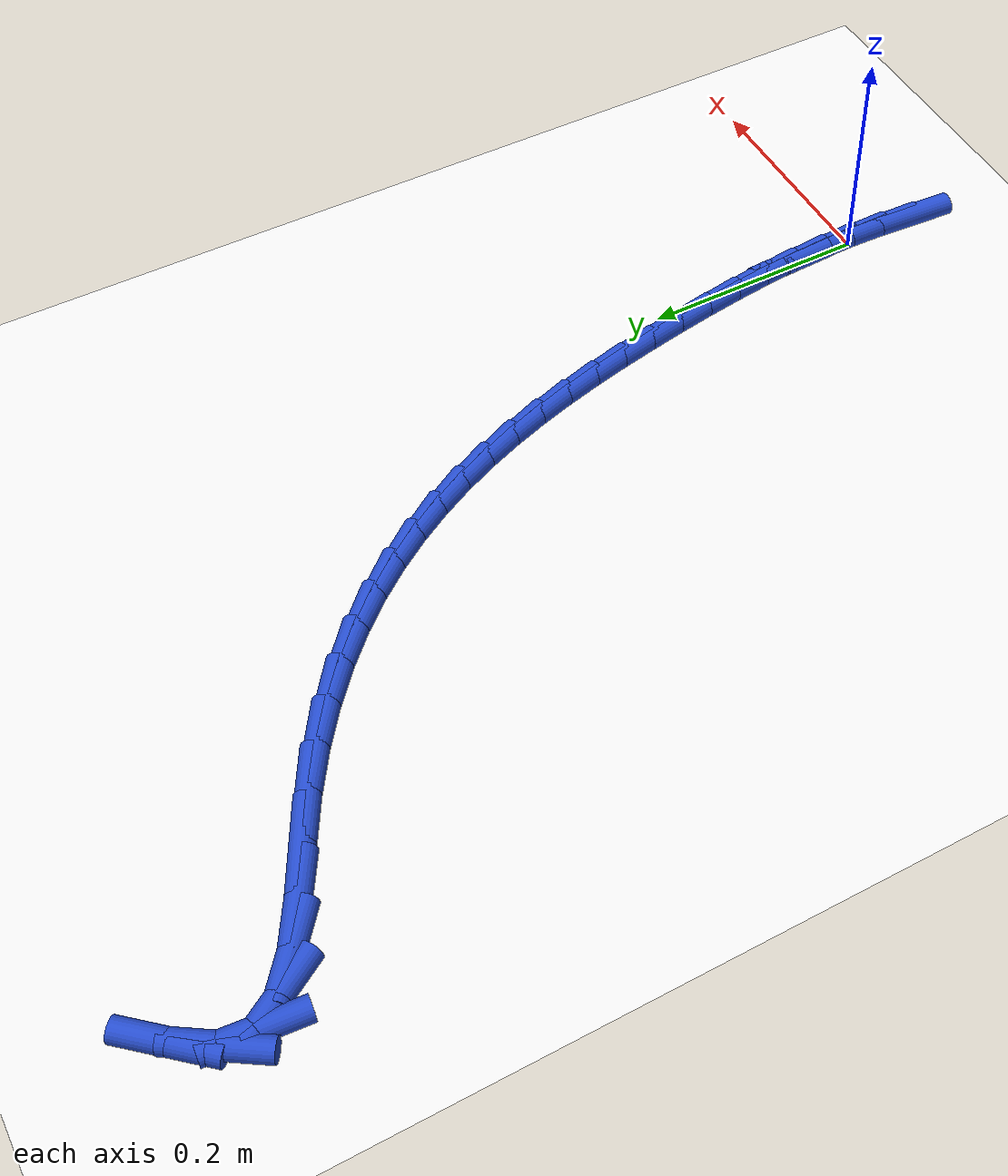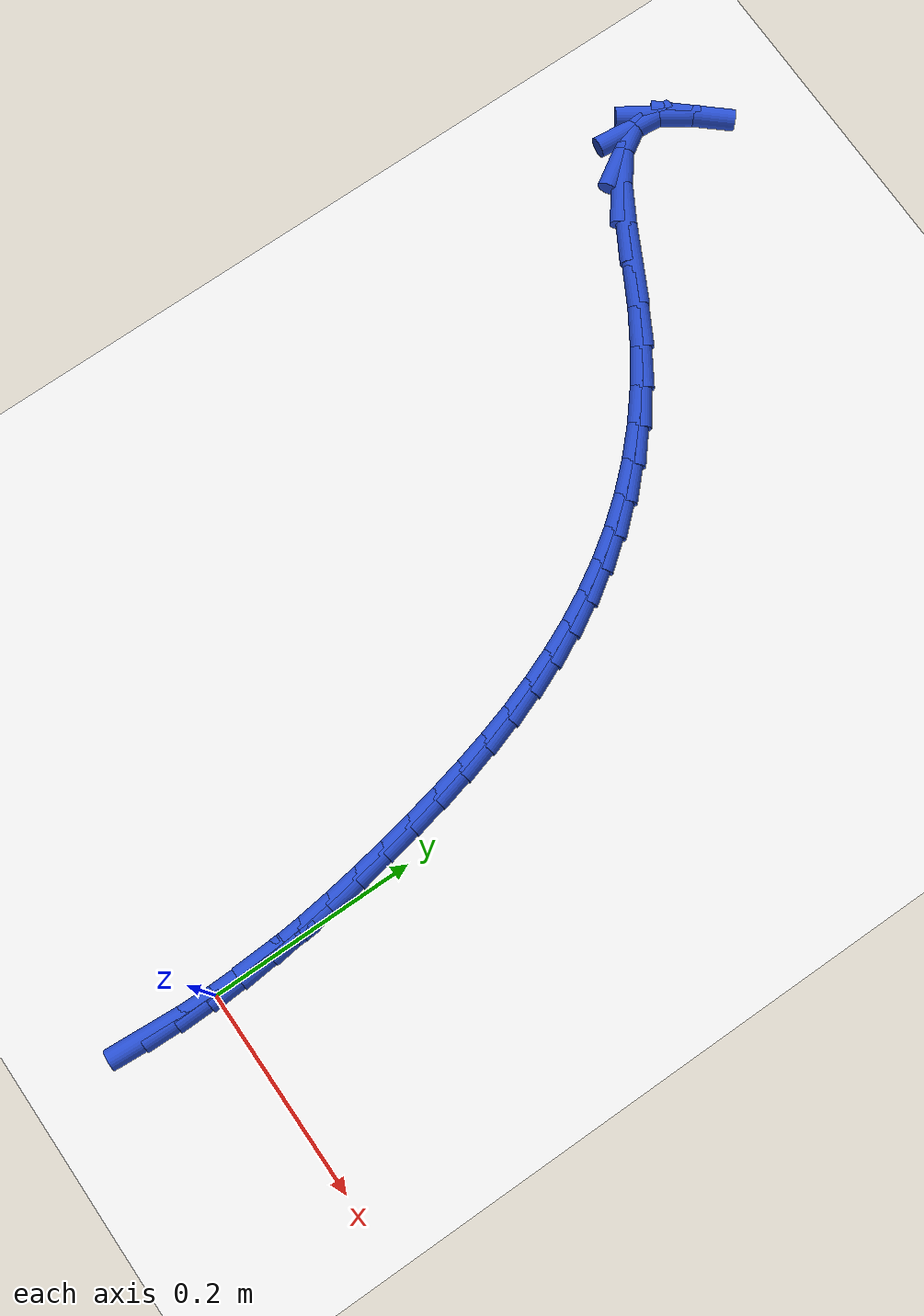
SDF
<sdf version="1.6">
 <world name="default">
  <model name="ground_plane">
   <static>1</static>
   <link name="link">
    <collision name="collision">
     <geometry><plane><normal>0 0 1</normal><size>100 100</size></plane></geometry>
     <surface><friction><ode><mu>100</mu><mu2>50</mu2></ode></friction></surface>
    </collision>
    <visual name="visual">
     <cast_shadows>0</cast_shadows>
     <geometry><plane><normal>0 0 1</normal><size>100 100</size></plane></geometry>
     <material>
      <script><uri>file://media/materials/scripts/gazebo.material</uri><name>Gazebo/WhiteGlow</name></script>
     </material>
    </visual>
   </link>
  </model>
  <model name="line">
   <link name="link_0">
    <pose>1.214306433183765e-17 0.0 0.01 0 1.57 -1.5551072129724937</pose>
    <collision name="collision">
     <geometry><cylinder><radius>0.01</radius><length>0.08</length></cylinder></geometry>
    </collision>
    <visual name="visual">
     <material>
      <script><name>Gazebo/Blue</name><uri>file://media/materials/scripts/gazebo.material</uri></script>
     </material>
     <geometry><cylinder><radius>0.01</radius><length>0.08</length></cylinder></geometry>
    </visual>
   </link>
   <link name="link_1">
    <pose>-0.0005051262843972646 0.03219333125570055 0.01 0 1.57 -1.5152921125011434</pose>
    <collision name="collision">
     <geometry><cylinder><radius>0.01</radius><length>0.08</length></cylinder></geometry>
    </collision>
    <visual name="visual">
     <material>
      <script><name>Gazebo/Blue</name><uri>file://media/materials/scripts/gazebo.material</uri></script>
     </material>
     <geometry><cylinder><radius>0.01</radius><length>0.08</length></cylinder></geometry>
    </visual>
   </link>
   <link name="link_2">
    <pose>-0.0023020713427604387 0.06453500852398819 0.01 0 1.57 -1.4802998185177854</pose>
    <collision name="collision">
     <geometry><cylinder><radius>0.01</radius><length>0.08</length></cylinder></geometry>
    </collision>
    <visual name="visual">
     <material>
      <script><name>Gazebo/Blue</name><uri>file://media/materials/scripts/gazebo.material</uri></script>
     </material>
     <geometry><cylinder><radius>0.01</radius><length>0.08</length></cylinder></geometry>
    </visual>
   </link>
   <link name="link_3">
    <pose>-0.005243965689076253 0.09695459041785584 0.01 0 1.57 -1.4498862782628061</pose>
    <collision name="collision">
     <geometry><cylinder><radius>0.01</radius><length>0.08</length></cylinder></geometry>
    </collision>
    <visual name="visual">
     <material>
      <script><name>Gazebo/Blue</name><uri>file://media/materials/scripts/gazebo.material</uri></script>
     </material>
     <geometry><cylinder><radius>0.01</radius><length>0.08</length></cylinder></geometry>
    </visual>
   </link>
   <link name="link_4">
    <pose>-0.009183939837331458 0.12938163555029647 0.01 0 1.57 -1.4238235570488222</pose>
    <collision name="collision">
     <geometry><cylinder><radius>0.01</radius><length>0.08</length></cylinder></geometry>
    </collision>
    <visual name="visual">
     <material>
      <script><name>Gazebo/Blue</name><uri>file://media/materials/scripts/gazebo.material</uri></script>
     </material>
     <geometry><cylinder><radius>0.01</radius><length>0.08</length></cylinder></geometry>
    </visual>
   </link>
   <link name="link_5">
    <pose>-0.013975124301512792 0.161745702534303 0.01 0 1.57 -1.4019142268692817</pose>
    <collision name="collision">
     <geometry><cylinder><radius>0.01</radius><length>0.08</length></cylinder></geometry>
    </collision>
    <visual name="visual">
     <material>
      <script><name>Gazebo/Blue</name><uri>file://media/materials/scripts/gazebo.material</uri></script>
     </material>
     <geometry><cylinder><radius>0.01</radius><length>0.08</length></cylinder></geometry>
    </visual>
   </link>
   <link name="link_6">
    <pose>-0.019470649595607015 0.19397634998286845 0.01 0 1.57 -1.3839388090972564</pose>
    <collision name="collision">
     <geometry><cylinder><radius>0.01</radius><length>0.08</length></cylinder></geometry>
    </collision>
    <visual name="visual">
     <material>
      <script><name>Gazebo/Blue</name><uri>file://media/materials/scripts/gazebo.material</uri></script>
     </material>
     <geometry><cylinder><radius>0.01</radius><length>0.08</length></cylinder></geometry>
    </visual>
   </link>
   <link name="link_7">
    <pose>-0.025525753740951982 0.22600324851694373 0.01 0 1.57 -1.3663174284719959</pose>
    <collision name="collision">
     <geometry><cylinder><radius>0.01</radius><length>0.08</length></cylinder></geometry>
    </collision>
    <visual name="visual">
     <material>
      <script><name>Gazebo/Blue</name><uri>file://media/materials/scripts/gazebo.material</uri></script>
     </material>
     <geometry><cylinder><radius>0.01</radius><length>0.08</length></cylinder></geometry>
    </visual>
   </link>
   <link name="link_8">
    <pose>-0.03211184655908344 0.25776224295474537 0.01 0 1.57 -1.3437445476282743</pose>
    <collision name="collision">
     <geometry><cylinder><radius>0.01</radius><length>0.08</length></cylinder></geometry>
    </collision>
    <visual name="visual">
     <material>
      <script><name>Gazebo/Blue</name><uri>file://media/materials/scripts/gazebo.material</uri></script>
     </material>
     <geometry><cylinder><radius>0.01</radius><length>0.08</length></cylinder></geometry>
    </visual>
   </link>
   <link name="link_9">
    <pose>-0.039374730204036784 0.28919844656570265 0.01 0 1.57 -1.3156919901911617</pose>
    <collision name="collision">
     <geometry><cylinder><radius>0.01</radius><length>0.08</length></cylinder></geometry>
    </collision>
    <visual name="visual">
     <material>
      <script><name>Gazebo/Blue</name><uri>file://media/materials/scripts/gazebo.material</uri></script>
     </material>
     <geometry><cylinder><radius>0.01</radius><length>0.08</length></cylinder></geometry>
    </visual>
   </link>
   <link name="link_10">
    <pose>-0.04747456421903427 0.32025773567321236 0.01 0 1.57 -1.2820834902112814</pose>
    <collision name="collision">
     <geometry><cylinder><radius>0.01</radius><length>0.08</length></cylinder></geometry>
    </collision>
    <visual name="visual">
     <material>
      <script><name>Gazebo/Blue</name><uri>file://media/materials/scripts/gazebo.material</uri></script>
     </material>
     <geometry><cylinder><radius>0.01</radius><length>0.08</length></cylinder></geometry>
    </visual>
   </link>
   <link name="link_11">
    <pose>-0.05657150814729814 0.3508859866006712 0.01 0 1.57 -1.2428923968872843</pose>
    <collision name="collision">
     <geometry><cylinder><radius>0.01</radius><length>0.08</length></cylinder></geometry>
    </collision>
    <visual name="visual">
     <material>
      <script><name>Gazebo/Blue</name><uri>file://media/materials/scripts/gazebo.material</uri></script>
     </material>
     <geometry><cylinder><radius>0.01</radius><length>0.08</length></cylinder></geometry>
    </visual>
   </link>
   <link name="link_12">
    <pose>-0.06682572153205067 0.38102907567147626 0.01 0 1.57 -1.1981735033514036</pose>
    <collision name="collision">
     <geometry><cylinder><radius>0.01</radius><length>0.08</length></cylinder></geometry>
    </collision>
    <visual name="visual">
     <material>
      <script><name>Gazebo/Blue</name><uri>file://media/materials/scripts/gazebo.material</uri></script>
     </material>
     <geometry><cylinder><radius>0.01</radius><length>0.08</length></cylinder></geometry>
    </visual>
   </link>
   <link name="link_13">
    <pose>-0.07839736391651411 0.4106328792090241 0.01 0 1.57 -1.1480985394847345</pose>
    <collision name="collision">
     <geometry><cylinder><radius>0.01</radius><length>0.08</length></cylinder></geometry>
    </collision>
    <visual name="visual">
     <material>
      <script><name>Gazebo/Blue</name><uri>file://media/materials/scripts/gazebo.material</uri></script>
     </material>
     <geometry><cylinder><radius>0.01</radius><length>0.08</length></cylinder></geometry>
    </visual>
   </link>
   <link name="link_14">
    <pose>-0.09144659484391073 0.43964327353671157 0.01 0 1.57 -1.0929911659208689</pose>
    <collision name="collision">
     <geometry><cylinder><radius>0.01</radius><length>0.08</length></cylinder></geometry>
    </collision>
    <visual name="visual">
     <material>
      <script><name>Gazebo/Blue</name><uri>file://media/materials/scripts/gazebo.material</uri></script>
     </material>
     <geometry><cylinder><radius>0.01</radius><length>0.08</length></cylinder></geometry>
    </visual>
   </link>
   <link name="link_15">
    <pose>-0.10613357385746272 0.46800613497793553 0.01 0 1.57 -1.0333549780401643</pose>
    <collision name="collision">
     <geometry><cylinder><radius>0.01</radius><length>0.08</length></cylinder></geometry>
    </collision>
    <visual name="visual">
     <material>
      <script><name>Gazebo/Blue</name><uri>file://media/materials/scripts/gazebo.material</uri></script>
     </material>
     <geometry><cylinder><radius>0.01</radius><length>0.08</length></cylinder></geometry>
    </visual>
   </link>
   <link name="link_16">
    <pose>-0.12261846050039243 0.49566733985609285 0.01 0 1.57 -0.9698864127781095</pose>
    <collision name="collision">
     <geometry><cylinder><radius>0.01</radius><length>0.08</length></cylinder></geometry>
    </collision>
    <visual name="visual">
     <material>
      <script><name>Gazebo/Blue</name><uri>file://media/materials/scripts/gazebo.material</uri></script>
     </material>
     <geometry><cylinder><radius>0.01</radius><length>0.08</length></cylinder></geometry>
    </visual>
   </link>
   <link name="link_17">
    <pose>-0.14106141431592206 0.5225727644945801 0.01 0 1.57 -0.9034648155401545</pose>
    <collision name="collision">
     <geometry><cylinder><radius>0.01</radius><length>0.08</length></cylinder></geometry>
    </collision>
    <visual name="visual">
     <material>
      <script><name>Gazebo/Blue</name><uri>file://media/materials/scripts/gazebo.material</uri></script>
     </material>
     <geometry><cylinder><radius>0.01</radius><length>0.08</length></cylinder></geometry>
    </visual>
   </link>
   <link name="link_18">
    <pose>-0.16162259484727387 0.5486682852167944 0.01 0 1.57 -0.8351152954029909</pose>
    <collision name="collision">
     <geometry><cylinder><radius>0.01</radius><length>0.08</length></cylinder></geometry>
    </collision>
    <visual name="visual">
     <material>
      <script><name>Gazebo/Blue</name><uri>file://media/materials/scripts/gazebo.material</uri></script>
     </material>
     <geometry><cylinder><radius>0.01</radius><length>0.08</length></cylinder></geometry>
    </visual>
   </link>
   <link name="link_19">
    <pose>-0.1844621616376701 0.5738997783461324 0.01 0 1.57 -0.7659462425380974</pose>
    <collision name="collision">
     <geometry><cylinder><radius>0.01</radius><length>0.08</length></cylinder></geometry>
    </collision>
    <visual name="visual">
     <material>
      <script><name>Gazebo/Blue</name><uri>file://media/materials/scripts/gazebo.material</uri></script>
     </material>
     <geometry><cylinder><radius>0.01</radius><length>0.08</length></cylinder></geometry>
    </visual>
   </link>
   <link name="link_20">
    <pose>-0.20974027423033315 0.598213120205991 0.01 0 1.57 -0.6970706329789814</pose>
    <collision name="collision">
     <geometry><cylinder><radius>0.01</radius><length>0.08</length></cylinder></geometry>
    </collision>
    <visual name="visual">
     <material>
      <script><name>Gazebo/Blue</name><uri>file://media/materials/scripts/gazebo.material</uri></script>
     </material>
     <geometry><cylinder><radius>0.01</radius><length>0.08</length></cylinder></geometry>
    </visual>
   </link>
   <link name="link_21">
    <pose>-0.23761709216848506 0.621554187119767 0.01 0 1.57 -0.6295254451600336</pose>
    <collision name="collision">
     <geometry><cylinder><radius>0.01</radius><length>0.08</length></cylinder></geometry>
    </collision>
    <visual name="visual">
     <material>
      <script><name>Gazebo/Blue</name><uri>file://media/materials/scripts/gazebo.material</uri></script>
     </material>
     <geometry><cylinder><radius>0.01</radius><length>0.08</length></cylinder></geometry>
    </visual>
   </link>
   <link name="link_22">
    <pose>-0.2682527749953481 0.6438688554108569 0.01 0 1.57 -0.5642041275196544</pose>
    <collision name="collision">
     <geometry><cylinder><radius>0.01</radius><length>0.08</length></cylinder></geometry>
    </collision>
    <visual name="visual">
     <material>
      <script><name>Gazebo/Blue</name><uri>file://media/materials/scripts/gazebo.material</uri></script>
     </material>
     <geometry><cylinder><radius>0.01</radius><length>0.08</length></cylinder></geometry>
    </visual>
   </link>
   <link name="link_23">
    <pose>-0.30180748225414467 0.665103001402658 0.01 0 1.57 -0.5035021522794236</pose>
    <collision name="collision">
     <geometry><cylinder><radius>0.01</radius><length>0.08</length></cylinder></geometry>
    </collision>
    <visual name="visual">
     <material>
      <script><name>Gazebo/Blue</name><uri>file://media/materials/scripts/gazebo.material</uri></script>
     </material>
     <geometry><cylinder><radius>0.01</radius><length>0.08</length></cylinder></geometry>
    </visual>
   </link>
   <link name="link_24">
    <pose>-0.3383348735912183 0.6852244284133747 0.01 0 1.57 -0.4797698481001998</pose>
    <collision name="collision">
     <geometry><cylinder><radius>0.01</radius><length>0.08</length></cylinder></geometry>
    </collision>
    <visual name="visual">
     <material>
      <script><name>Gazebo/Blue</name><uri>file://media/materials/scripts/gazebo.material</uri></script>
     </material>
     <geometry><cylinder><radius>0.01</radius><length>0.08</length></cylinder></geometry>
    </visual>
   </link>
   <link name="link_25">
    <pose>-0.3756798371373037 0.7046556981504144 0.01 0 1.57 -0.5237333317282393</pose>
    <collision name="collision">
     <geometry><cylinder><radius>0.01</radius><length>0.08</length></cylinder></geometry>
    </collision>
    <visual name="visual">
     <material>
      <script><name>Gazebo/Blue</name><uri>file://media/materials/scripts/gazebo.material</uri></script>
     </material>
     <geometry><cylinder><radius>0.01</radius><length>0.08</length></cylinder></geometry>
    </visual>
   </link>
   <link name="link_26">
    <pose>-0.4096044853300048 0.7242481897486928 0.01 0 1.57 -0.6670960225403552</pose>
    <collision name="collision">
     <geometry><cylinder><radius>0.01</radius><length>0.08</length></cylinder></geometry>
    </collision>
    <visual name="visual">
     <material>
      <script><name>Gazebo/Blue</name><uri>file://media/materials/scripts/gazebo.material</uri></script>
     </material>
     <geometry><cylinder><radius>0.01</radius><length>0.08</length></cylinder></geometry>
    </visual>
   </link>
   <link name="link_27">
    <pose>-0.4357896571292277 0.7448700155341968 0.01 0 1.57 -1.0105385790018424</pose>
    <collision name="collision">
     <geometry><cylinder><radius>0.01</radius><length>0.08</length></cylinder></geometry>
    </collision>
    <visual name="visual">
     <material>
      <script><name>Gazebo/Blue</name><uri>file://media/materials/scripts/gazebo.material</uri></script>
     </material>
     <geometry><cylinder><radius>0.01</radius><length>0.08</length></cylinder></geometry>
    </visual>
   </link>
   <link name="link_28">
    <pose>-0.44991619149487794 0.7673892878329139 0.01 0 1.57 1.4831105472021666</pose>
    <collision name="collision">
     <geometry><cylinder><radius>0.01</radius><length>0.08</length></cylinder></geometry>
    </collision>
    <visual name="visual">
     <material>
      <script><name>Gazebo/Blue</name><uri>file://media/materials/scripts/gazebo.material</uri></script>
     </material>
     <geometry><cylinder><radius>0.01</radius><length>0.08</length></cylinder></geometry>
    </visual>
   </link>
   <link name="link_29">
    <pose>-0.44769405347812974 0.7926663614591976 0.01 0 1.57 0.9899315327982782</pose>
    <collision name="collision">
     <geometry><cylinder><radius>0.01</radius><length>0.08</length></cylinder></geometry>
    </collision>
    <visual name="visual">
     <material>
      <script><name>Gazebo/Blue</name><uri>file://media/materials/scripts/gazebo.material</uri></script>
     </material>
     <geometry><cylinder><radius>0.01</radius><length>0.08</length></cylinder></geometry>
    </visual>
   </link>
   <link name="link_30">
    <pose>-0.42955206669027557 0.8203047593429251 0.01 0 1.57 0.84892931614347</pose>
    <collision name="collision">
     <geometry><cylinder><radius>0.01</radius><length>0.08</length></cylinder></geometry>
    </collision>
    <visual name="visual">
     <material>
      <script><name>Gazebo/Blue</name><uri>file://media/materials/scripts/gazebo.material</uri></script>
     </material>
     <geometry><cylinder><radius>0.01</radius><length>0.08</length></cylinder></geometry>
    </visual>
   </link>
   <link name="link_288">
    <pose>-0.002992476772402962 -0.06392287750425198 0.01 0 1.57 1.5045793135540932</pose>
    <collision name="collision">
     <geometry><cylinder><radius>0.01</radius><length>0.08</length></cylinder></geometry>
    </collision>
    <visual name="visual">
     <material>
      <script><name>Gazebo/Blue</name><uri>file://media/materials/scripts/gazebo.material</uri></script>
     </material>
     <geometry><cylinder><radius>0.01</radius><length>0.08</length></cylinder></geometry>
    </visual>
   </link>
   <link name="link_289">
    <pose>-0.0008760363599877013 -0.03200742117843636 0.01 0 1.57 1.5434333691379074</pose>
    <collision name="collision">
     <geometry><cylinder><radius>0.01</radius><length>0.08</length></cylinder></geometry>
    </collision>
    <visual name="visual">
     <material>
      <script><name>Gazebo/Blue</name><uri>file://media/materials/scripts/gazebo.material</uri></script>
     </material>
     <geometry><cylinder><radius>0.01</radius><length>0.08</length></cylinder></geometry>
    </visual>
   </link>
   <link name="link_290">
    <pose>3.122502256758253e-17 1.8041124150158794e-16 0.01 0 1.57 -1.5533386498370154</pose>
    <collision name="collision">
     <geometry><cylinder><radius>0.01</radius><length>0.08</length></cylinder></geometry>
    </collision>
    <visual name="visual">
     <material>
      <script><name>Gazebo/Blue</name><uri>file://media/materials/scripts/gazebo.material</uri></script>
     </material>
     <geometry><cylinder><radius>0.01</radius><length>0.08</length></cylinder></geometry>
    </visual>
   </link>
   <link name="link_291">
    <pose>-0.0005626518999913583 0.032226208578029804 0.01 0 1.57 -1.5033671875291894</pose>
    <collision name="collision">
     <geometry><cylinder><radius>0.01</radius><length>0.08</length></cylinder></geometry>
    </collision>
    <visual name="visual">
     <material>
      <script><name>Gazebo/Blue</name><uri>file://media/materials/scripts/gazebo.material</uri></script>
     </material>
     <geometry><cylinder><radius>0.01</radius><length>0.08</length></cylinder></geometry>
    </visual>
   </link>
   <link name="link_292">
    <pose>-0.0027622762675136208 0.06479802710262883 0.01 0 1.57 -1.5281931029065028</pose>
    <collision name="collision">
     <geometry><cylinder><radius>0.01</radius><length>0.08</length></cylinder></geometry>
    </collision>
    <visual name="visual">
     <material>
      <script><name>Gazebo/Blue</name><uri>file://media/materials/scripts/gazebo.material</uri></script>
     </material>
     <geometry><cylinder><radius>0.01</radius><length>0.08</length></cylinder></geometry>
    </visual>
   </link>
  </model>
 </world>
</sdf>
